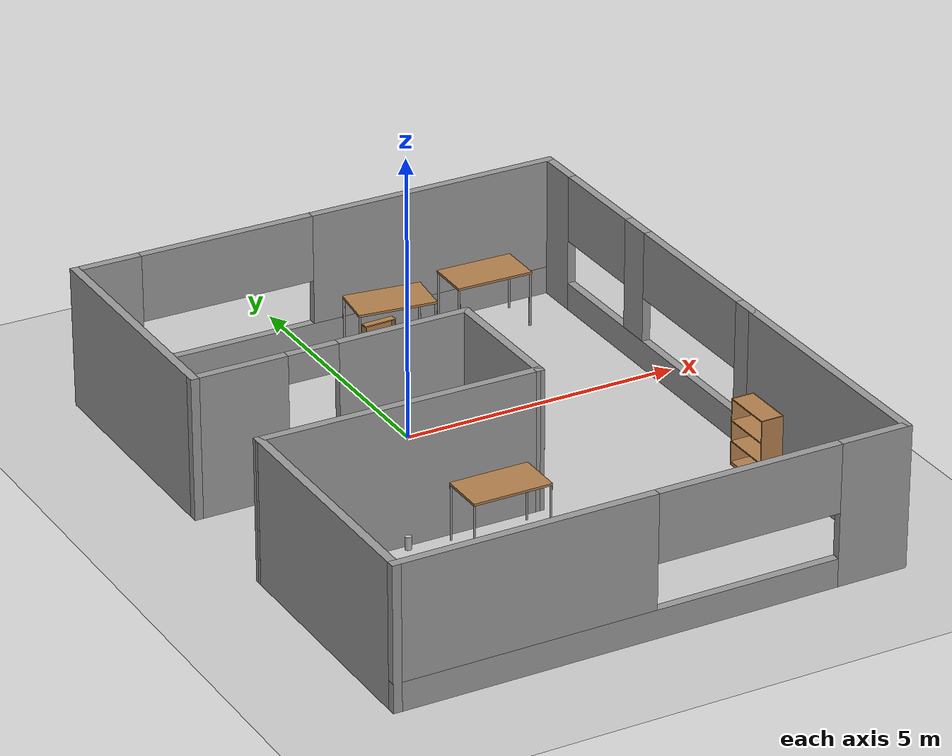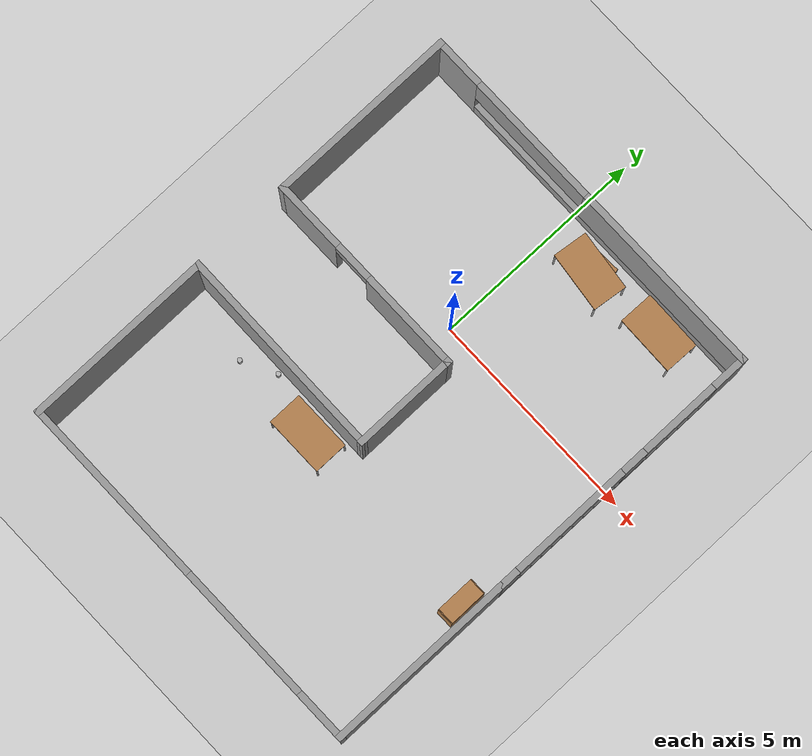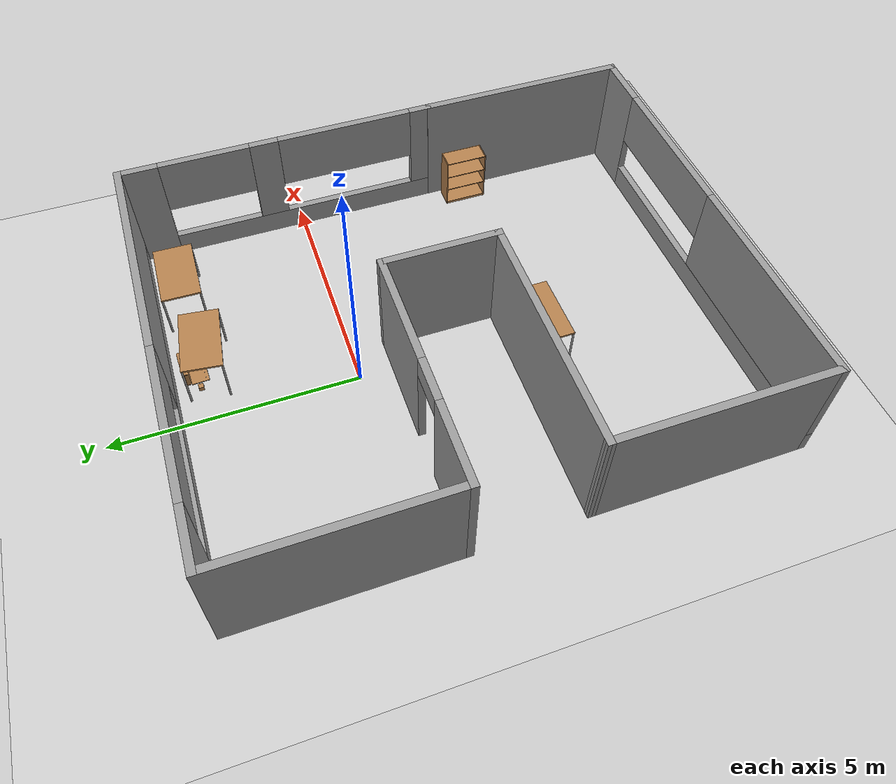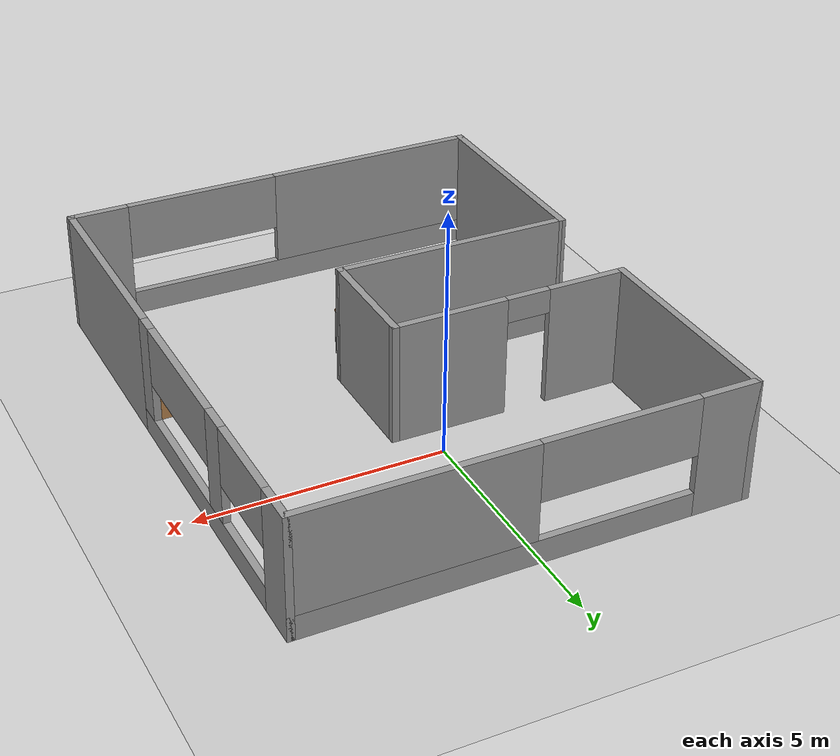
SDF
<sdf version="1.6">
 <world name="default">
  <model name="ground_plane">
   <static>1</static>
   <link name="link">
    <collision name="collision">
     <geometry><plane><normal>0 0 1</normal><size>100 100</size></plane></geometry>
     <surface><friction><ode><mu>100</mu><mu2>50</mu2></ode></friction></surface>
    </collision>
    <visual name="visual">
     <cast_shadows>0</cast_shadows>
     <geometry><plane><normal>0 0 1</normal><size>100 100</size></plane></geometry>
     <material>
      <script><uri>file://media/materials/scripts/gazebo.material</uri><name>Gazebo/Grey</name></script>
     </material>
    </visual>
   </link>
  </model>
  <model name="factory_room">
   <pose>0.23936 -1.91124 0 0 -0 0</pose>
   <link name="Wall_34">
    <collision name="Wall_34_Collision">
     <geometry><box><size>4.5 0.15 2.5</size></box></geometry>
     <pose>0 0 1.25 0 -0 0</pose>
    </collision>
    <visual name="Wall_34_Visual">
     <pose>0 0 1.25 0 -0 0</pose>
     <geometry><box><size>4.5 0.15 2.5</size></box></geometry>
     <material>
      <script><uri>file://media/materials/scripts/gazebo.material</uri><name>Gazebo/Grey</name></script>
      <ambient>1 1 1 1</ambient>
     </material>
    </visual>
    <pose>4.4246 -3.33419 0 0 0 -1.5708</pose>
   </link>
   <link name="Wall_35">
    <pose>-0.0004 -5.50919 0 0 -0 3.14159</pose>
    <visual name="Wall_35_Visual_0">
     <pose>-3.87038 0 1.25 0 -0 0</pose>
     <geometry><box><size>1.25925 0.15 2.5</size></box></geometry>
     <material>
      <script><uri>file://media/materials/scripts/gazebo.material</uri><name>Gazebo/Grey</name></script>
      <ambient>1 1 1 1</ambient>
     </material>
    </visual>
    <collision name="Wall_35_Collision_0">
     <geometry><box><size>1.25925 0.15 2.5</size></box></geometry>
     <pose>-3.87038 0 1.25 0 -0 0</pose>
    </collision>
    <visual name="Wall_35_Visual_1">
     <pose>0.629623 0 0.25 0 -0 0</pose>
     <geometry><box><size>7.74075 0.15 0.5</size></box></geometry>
     <material>
      <script><uri>file://media/materials/scripts/gazebo.material</uri><name>Gazebo/Grey</name></script>
      <ambient>1 1 1 1</ambient>
     </material>
    </visual>
    <collision name="Wall_35_Collision_1">
     <geometry><box><size>7.74075 0.15 0.5</size></box></geometry>
     <pose>0.629623 0 0.25 0 -0 0</pose>
    </collision>
    <visual name="Wall_35_Visual_2">
     <pose>2.24649 0 1.5 0 -0 0</pose>
     <geometry><box><size>4.50701 0.15 2</size></box></geometry>
     <material>
      <script><uri>file://media/materials/scripts/gazebo.material</uri><name>Gazebo/Grey</name></script>
      <ambient>1 1 1 1</ambient>
     </material>
    </visual>
    <collision name="Wall_35_Collision_2">
     <geometry><box><size>4.50701 0.15 2</size></box></geometry>
     <pose>2.24649 0 1.5 0 -0 0</pose>
    </collision>
    <visual name="Wall_35_Visual_3">
     <pose>-1.62388 0 1.9 0 -0 0</pose>
     <geometry><box><size>3.23374 0.15 1.2</size></box></geometry>
     <material>
      <script><uri>file://media/materials/scripts/gazebo.material</uri><name>Gazebo/Grey</name></script>
      <ambient>1 1 1 1</ambient>
     </material>
    </visual>
    <collision name="Wall_35_Collision_3">
     <geometry><box><size>3.23374 0.15 1.2</size></box></geometry>
     <pose>-1.62388 0 1.9 0 -0 0</pose>
    </collision>
   </link>
   <link name="Wall_36">
    <collision name="Wall_36_Collision">
     <geometry><box><size>4.5 0.15 2.5</size></box></geometry>
     <pose>0 0 1.25 0 -0 0</pose>
    </collision>
    <visual name="Wall_36_Visual">
     <pose>0 0 1.25 0 -0 0</pose>
     <geometry><box><size>4.5 0.15 2.5</size></box></geometry>
     <material>
      <script><uri>file://media/materials/scripts/gazebo.material</uri><name>Gazebo/Grey</name></script>
      <ambient>1 1 1 1</ambient>
     </material>
    </visual>
    <pose>-4.4254 -3.33419 0 0 -0 1.5708</pose>
   </link>
   <link name="Wall_38">
    <collision name="Wall_38_Collision">
     <geometry><box><size>2.5 0.15 2.5</size></box></geometry>
     <pose>0 0 1.25 0 -0 0</pose>
    </collision>
    <visual name="Wall_38_Visual">
     <pose>0 0 1.25 0 -0 0</pose>
     <geometry><box><size>2.5 0.15 2.5</size></box></geometry>
     <material>
      <script><uri>file://media/materials/scripts/gazebo.material</uri><name>Gazebo/Grey</name></script>
      <ambient>1 1 1 1</ambient>
     </material>
    </visual>
    <pose>0.425887 -0.015813 0 0 -0 1.5708</pose>
   </link>
   <link name="Wall_39">
    <pose>-1.99911 1.15919 0 0 -0 3.14159</pose>
    <visual name="Wall_39_Visual_0">
     <pose>-1.30008 0 1.25 0 -0 0</pose>
     <geometry><box><size>2.39984 0.15 2.5</size></box></geometry>
     <material>
      <script><uri>file://media/materials/scripts/gazebo.material</uri><name>Gazebo/Grey</name></script>
      <ambient>1 1 1 1</ambient>
     </material>
    </visual>
    <collision name="Wall_39_Collision_0">
     <geometry><box><size>2.39984 0.15 2.5</size></box></geometry>
     <pose>-1.30008 0 1.25 0 -0 0</pose>
    </collision>
    <visual name="Wall_39_Visual_1">
     <pose>1.64992 0 1.25 0 -0 0</pose>
     <geometry><box><size>1.70016 0.15 2.5</size></box></geometry>
     <material>
      <script><uri>file://media/materials/scripts/gazebo.material</uri><name>Gazebo/Grey</name></script>
      <ambient>1 1 1 1</ambient>
     </material>
    </visual>
    <collision name="Wall_39_Collision_1">
     <geometry><box><size>1.70016 0.15 2.5</size></box></geometry>
     <pose>1.64992 0 1.25 0 -0 0</pose>
    </collision>
    <visual name="Wall_39_Visual_2">
     <pose>0.349836 0 2.25 0 -0 0</pose>
     <geometry><box><size>0.9 0.15 0.5</size></box></geometry>
     <material>
      <script><uri>file://media/materials/scripts/gazebo.material</uri><name>Gazebo/Grey</name></script>
      <ambient>1 1 1 1</ambient>
     </material>
    </visual>
    <collision name="Wall_39_Collision_2">
     <geometry><box><size>0.9 0.15 0.5</size></box></geometry>
     <pose>0.349836 0 2.25 0 -0 0</pose>
    </collision>
   </link>
   <link name="Wall_40">
    <collision name="Wall_40_Collision">
     <geometry><box><size>4.5 0.15 2.5</size></box></geometry>
     <pose>0 0 1.25 0 -0 0</pose>
    </collision>
    <visual name="Wall_40_Visual">
     <pose>0 0 1.25 0 -0 0</pose>
     <geometry><box><size>4.5 0.15 2.5</size></box></geometry>
     <material>
      <script><uri>file://media/materials/scripts/gazebo.material</uri><name>Gazebo/Grey</name></script>
      <ambient>1 1 1 1</ambient>
     </material>
    </visual>
    <pose>-4.42411 3.33419 0 0 -0 1.5708</pose>
   </link>
   <link name="Wall_41">
    <pose>0.000887 5.50919 0 0 -0 0</pose>
    <visual name="Wall_41_Visual_0">
     <pose>-3.8901 0 1.25 0 -0 0</pose>
     <geometry><box><size>1.21979 0.15 2.5</size></box></geometry>
     <material>
      <script><uri>file://media/materials/scripts/gazebo.material</uri><name>Gazebo/Grey</name></script>
      <ambient>1 1 1 1</ambient>
     </material>
    </visual>
    <collision name="Wall_41_Collision_0">
     <geometry><box><size>1.21979 0.15 2.5</size></box></geometry>
     <pose>-3.8901 0 1.25 0 -0 0</pose>
    </collision>
    <visual name="Wall_41_Visual_1">
     <pose>0.609898 0 0.25 0 -0 0</pose>
     <geometry><box><size>7.7802 0.15 0.5</size></box></geometry>
     <material>
      <script><uri>file://media/materials/scripts/gazebo.material</uri><name>Gazebo/Grey</name></script>
      <ambient>1 1 1 1</ambient>
     </material>
    </visual>
    <collision name="Wall_41_Collision_1">
     <geometry><box><size>7.7802 0.15 0.5</size></box></geometry>
     <pose>0.609898 0 0.25 0 -0 0</pose>
    </collision>
    <visual name="Wall_41_Visual_2">
     <pose>2.18031 0 1.5 0 -0 0</pose>
     <geometry><box><size>4.63939 0.15 2</size></box></geometry>
     <material>
      <script><uri>file://media/materials/scripts/gazebo.material</uri><name>Gazebo/Grey</name></script>
      <ambient>1 1 1 1</ambient>
     </material>
    </visual>
    <collision name="Wall_41_Collision_2">
     <geometry><box><size>4.63939 0.15 2</size></box></geometry>
     <pose>2.18031 0 1.5 0 -0 0</pose>
    </collision>
    <visual name="Wall_41_Visual_3">
     <pose>-1.7098 0 1.9 0 -0 0</pose>
     <geometry><box><size>3.14082 0.15 1.2</size></box></geometry>
     <material>
      <script><uri>file://media/materials/scripts/gazebo.material</uri><name>Gazebo/Grey</name></script>
      <ambient>1 1 1 1</ambient>
     </material>
    </visual>
    <collision name="Wall_41_Collision_3">
     <geometry><box><size>3.14082 0.15 1.2</size></box></geometry>
     <pose>-1.7098 0 1.9 0 -0 0</pose>
    </collision>
   </link>
   <link name="Wall_42">
    <pose>4.42589 2.20919 0 0 0 -1.5708</pose>
    <visual name="Wall_42_Visual_0">
     <pose>-2.93644 0 1.25 0 -0 0</pose>
     <geometry><box><size>0.87712 0.15 2.5</size></box></geometry>
     <material>
      <script><uri>file://media/materials/scripts/gazebo.material</uri><name>Gazebo/Grey</name></script>
      <ambient>1 1 1 1</ambient>
     </material>
    </visual>
    <collision name="Wall_42_Collision_0">
     <geometry><box><size>0.87712 0.15 2.5</size></box></geometry>
     <pose>-2.93644 0 1.25 0 -0 0</pose>
    </collision>
    <visual name="Wall_42_Visual_1">
     <pose>0.43856 0 0.25 0 -0 0</pose>
     <geometry><box><size>5.87288 0.15 0.5</size></box></geometry>
     <material>
      <script><uri>file://media/materials/scripts/gazebo.material</uri><name>Gazebo/Grey</name></script>
      <ambient>1 1 1 1</ambient>
     </material>
    </visual>
    <collision name="Wall_42_Collision_1">
     <geometry><box><size>5.87288 0.15 0.5</size></box></geometry>
     <pose>0.43856 0 0.25 0 -0 0</pose>
    </collision>
    <visual name="Wall_42_Visual_2">
     <pose>-0.302367 0 1.5 0 -0 0</pose>
     <geometry><box><size>0.609811 0.15 2</size></box></geometry>
     <material>
      <script><uri>file://media/materials/scripts/gazebo.material</uri><name>Gazebo/Grey</name></script>
      <ambient>1 1 1 1</ambient>
     </material>
    </visual>
    <collision name="Wall_42_Collision_2">
     <geometry><box><size>0.609811 0.15 2</size></box></geometry>
     <pose>-0.302367 0 1.5 0 -0 0</pose>
    </collision>
    <visual name="Wall_42_Visual_3">
     <pose>3.13334 0 1.5 0 -0 0</pose>
     <geometry><box><size>0.483315 0.15 2</size></box></geometry>
     <material>
      <script><uri>file://media/materials/scripts/gazebo.material</uri><name>Gazebo/Grey</name></script>
      <ambient>1 1 1 1</ambient>
     </material>
    </visual>
    <collision name="Wall_42_Collision_3">
     <geometry><box><size>0.483315 0.15 2</size></box></geometry>
     <pose>3.13334 0 1.5 0 -0 0</pose>
    </collision>
    <visual name="Wall_42_Visual_4">
     <pose>-1.55258 0 1.9 0 -0 0</pose>
     <geometry><box><size>1.89061 0.15 1.2</size></box></geometry>
     <material>
      <script><uri>file://media/materials/scripts/gazebo.material</uri><name>Gazebo/Grey</name></script>
      <ambient>1 1 1 1</ambient>
     </material>
    </visual>
    <collision name="Wall_42_Collision_4">
     <geometry><box><size>1.89061 0.15 1.2</size></box></geometry>
     <pose>-1.55258 0 1.9 0 -0 0</pose>
    </collision>
    <visual name="Wall_42_Visual_5">
     <pose>1.44711 0 1.9 0 -0 0</pose>
     <geometry><box><size>2.88915 0.15 1.2</size></box></geometry>
     <material>
      <script><uri>file://media/materials/scripts/gazebo.material</uri><name>Gazebo/Grey</name></script>
      <ambient>1 1 1 1</ambient>
     </material>
    </visual>
    <collision name="Wall_42_Collision_5">
     <geometry><box><size>2.88915 0.15 1.2</size></box></geometry>
     <pose>1.44711 0 1.9 0 -0 0</pose>
    </collision>
   </link>
   <link name="Wall_44">
    <collision name="Wall_44_Collision">
     <geometry><box><size>5.00139 0.15 2.5</size></box></geometry>
     <pose>0 0 1.25 0 -0 0</pose>
    </collision>
    <visual name="Wall_44_Visual">
     <pose>0 0 1.25 0 -0 0</pose>
     <geometry><box><size>5.00139 0.15 2.5</size></box></geometry>
     <material>
      <script><uri>file://media/materials/scripts/gazebo.material</uri><name>Gazebo/Grey</name></script>
      <ambient>1 1 1 1</ambient>
     </material>
    </visual>
    <pose>-1.99976 -1.175 0 0 0 -0.006519</pose>
   </link>
   <static>1</static>
  </model>
  <model name="table">
   <static>0</static>
   <link name="link">
    <collision name="surface">
     <pose>0 0 1 0 -0 0</pose>
     <geometry><box><size>1.5 0.8 0.03</size></box></geometry>
     <surface><friction><ode><mu>0.6</mu><mu2>0.6</mu2></ode></friction></surface>
    </collision>
    <visual name="visual1">
     <pose>0 0 1 0 -0 0</pose>
     <geometry><box><size>1.4 0.8 0.04</size></box></geometry>
     <material>
      <script><uri>file://media/materials/scripts/gazebo.material</uri><name>Gazebo/Wood</name></script>
     </material>
    </visual>
    <collision name="front_left_leg">
     <pose>0.68 0.38 0.5 0 -0 0</pose>
     <geometry><cylinder><radius>0.02</radius><length>1</length></cylinder></geometry>
    </collision>
    <visual name="front_left_leg">
     <pose>0.68 0.38 0.5 0 -0 0</pose>
     <geometry><cylinder><radius>0.02</radius><length>1</length></cylinder></geometry>
     <material>
      <script><uri>file://media/materials/scripts/gazebo.material</uri><name>Gazebo/Grey</name></script>
     </material>
    </visual>
    <collision name="front_right_leg">
     <pose>0.68 -0.38 0.5 0 -0 0</pose>
     <geometry><cylinder><radius>0.02</radius><length>1</length></cylinder></geometry>
    </collision>
    <visual name="front_right_leg">
     <pose>0.68 -0.38 0.5 0 -0 0</pose>
     <geometry><cylinder><radius>0.02</radius><length>1</length></cylinder></geometry>
     <material>
      <script><uri>file://media/materials/scripts/gazebo.material</uri><name>Gazebo/Grey</name></script>
     </material>
    </visual>
    <collision name="back_right_leg">
     <pose>-0.68 -0.38 0.5 0 -0 0</pose>
     <geometry><cylinder><radius>0.02</radius><length>1</length></cylinder></geometry>
    </collision>
    <visual name="back_right_leg">
     <pose>-0.68 -0.38 0.5 0 -0 0</pose>
     <geometry><cylinder><radius>0.02</radius><length>1</length></cylinder></geometry>
     <material>
      <script><uri>file://media/materials/scripts/gazebo.material</uri><name>Gazebo/Grey</name></script>
     </material>
    </visual>
    <collision name="back_left_leg">
     <pose>-0.68 0.38 0.5 0 -0 0</pose>
     <geometry><cylinder><radius>0.02</radius><length>1</length></cylinder></geometry>
    </collision>
    <visual name="back_left_leg">
     <pose>-0.68 0.38 0.5 0 -0 0</pose>
     <geometry><cylinder><radius>0.02</radius><length>1</length></cylinder></geometry>
     <material>
      <script><uri>file://media/materials/scripts/gazebo.material</uri><name>Gazebo/Grey</name></script>
     </material>
    </visual>
    <inertial>
     <inertia><ixx>1</ixx><ixy>0</ixy><ixz>0</ixz><iyy>1</iyy><iyz>0</iyz><izz>1</izz></inertia>
     <mass>1</mass>
    </inertial>
   </link>
   <pose>1.1663 2.81965 0 0 0 -0.122893</pose>
  </model>
  <model name="table_0">
   <static>0</static>
   <link name="link">
    <collision name="surface">
     <pose>0 0 1 0 -0 0</pose>
     <geometry><box><size>1.5 0.8 0.03</size></box></geometry>
     <surface><friction><ode><mu>0.6</mu><mu2>0.6</mu2></ode></friction></surface>
    </collision>
    <visual name="visual1">
     <pose>0 0 1 0 -0 0</pose>
     <geometry><box><size>1.4 0.8 0.04</size></box></geometry>
     <material>
      <script><uri>file://media/materials/scripts/gazebo.material</uri><name>Gazebo/Wood</name></script>
     </material>
    </visual>
    <collision name="front_left_leg">
     <pose>0.68 0.38 0.5 0 -0 0</pose>
     <geometry><cylinder><radius>0.02</radius><length>1</length></cylinder></geometry>
    </collision>
    <visual name="front_left_leg">
     <pose>0.68 0.38 0.5 0 -0 0</pose>
     <geometry><cylinder><radius>0.02</radius><length>1</length></cylinder></geometry>
     <material>
      <script><uri>file://media/materials/scripts/gazebo.material</uri><name>Gazebo/Grey</name></script>
     </material>
    </visual>
    <collision name="front_right_leg">
     <pose>0.68 -0.38 0.5 0 -0 0</pose>
     <geometry><cylinder><radius>0.02</radius><length>1</length></cylinder></geometry>
    </collision>
    <visual name="front_right_leg">
     <pose>0.68 -0.38 0.5 0 -0 0</pose>
     <geometry><cylinder><radius>0.02</radius><length>1</length></cylinder></geometry>
     <material>
      <script><uri>file://media/materials/scripts/gazebo.material</uri><name>Gazebo/Grey</name></script>
     </material>
    </visual>
    <collision name="back_right_leg">
     <pose>-0.68 -0.38 0.5 0 -0 0</pose>
     <geometry><cylinder><radius>0.02</radius><length>1</length></cylinder></geometry>
    </collision>
    <visual name="back_right_leg">
     <pose>-0.68 -0.38 0.5 0 -0 0</pose>
     <geometry><cylinder><radius>0.02</radius><length>1</length></cylinder></geometry>
     <material>
      <script><uri>file://media/materials/scripts/gazebo.material</uri><name>Gazebo/Grey</name></script>
     </material>
    </visual>
    <collision name="back_left_leg">
     <pose>-0.68 0.38 0.5 0 -0 0</pose>
     <geometry><cylinder><radius>0.02</radius><length>1</length></cylinder></geometry>
    </collision>
    <visual name="back_left_leg">
     <pose>-0.68 0.38 0.5 0 -0 0</pose>
     <geometry><cylinder><radius>0.02</radius><length>1</length></cylinder></geometry>
     <material>
      <script><uri>file://media/materials/scripts/gazebo.material</uri><name>Gazebo/Grey</name></script>
     </material>
    </visual>
    <inertial>
     <inertia><ixx>1</ixx><ixy>0</ixy><ixz>0</ixz><iyy>1</iyy><iyz>0</iyz><izz>1</izz></inertia>
     <mass>1</mass>
    </inertial>
   </link>
   <pose>3.06043 2.96984 -2e-06 -0 3e-06 -0.019784</pose>
  </model>
  <model name="wooden_case_metal_peg">
   <link name="wooden_case::base">
    <pose>0 0 0.024 0 -0 0</pose>
    <inertial>
     <pose>-0.022184 0 0.171592 0 -0 0</pose>
     <mass>3.96264</mass>
     <inertia>
      <ixx>0.213536</ixx>
      <ixy>0</ixy>
      <ixz>0.000779377</ixz>
      <iyy>0.0708943</iyy>
      <iyz>0</iyz>
      <izz>0.154604</izz>
     </inertia>
    </inertial>
    <collision name="collision_back">
     <pose>-0.053975 0 0.1778 0 -0 0</pose>
     <geometry><box><size>0.01905 0.5461 0.3175</size></box></geometry>
     <surface>
      <contact>
       <poissons_ratio>0.347</poissons_ratio>
       <elastic_modulus>8.8e+09</elastic_modulus>
       <ode><kp>100000</kp><kd>100</kd><max_vel>100</max_vel><min_depth>0.001</min_depth></ode>
      </contact>
      <friction>
       <torsional>
        <coefficient>1</coefficient>
        <use_patch_radius>0</use_patch_radius>
        <surface_radius>0.01</surface_radius>
       </torsional>
      </friction>
     </surface>
    </collision>
    <visual name="visual_back">
     <pose>-0.053975 0 0.1778 0 -0 0</pose>
     <geometry><box><size>0.01905 0.5461 0.3175</size></box></geometry>
     <material>
      <script><uri>file://media/materials/scripts/gazebo.material</uri><name>Gazebo/Wood</name></script>
     </material>
    </visual>
    <collision name="collision_bottom">
     <pose>0 0 0.009525 0 -0 0</pose>
     <geometry><box><size>0.127 0.5842 0.01905</size></box></geometry>
     <surface>
      <contact>
       <poissons_ratio>0.347</poissons_ratio>
       <elastic_modulus>8.8e+09</elastic_modulus>
       <ode><kp>100000</kp><kd>100</kd><max_vel>100</max_vel><min_depth>0.001</min_depth></ode>
      </contact>
      <friction>
       <torsional>
        <coefficient>1</coefficient>
        <use_patch_radius>0</use_patch_radius>
        <surface_radius>0.01</surface_radius>
       </torsional>
      </friction>
     </surface>
    </collision>
    <visual name="visual_bottom">
     <pose>0 0 0.009525 0 -0 0</pose>
     <geometry><box><size>0.127 0.5842 0.01905</size></box></geometry>
     <material>
      <script><uri>file://media/materials/scripts/gazebo.material</uri><name>Gazebo/Wood</name></script>
     </material>
    </visual>
    <collision name="collision_top">
     <pose>0 0 0.346075 0 -0 0</pose>
     <geometry><box><size>0.127 0.5842 0.01905</size></box></geometry>
     <surface>
      <contact>
       <poissons_ratio>0.347</poissons_ratio>
       <elastic_modulus>8.8e+09</elastic_modulus>
       <ode><kp>100000</kp><kd>100</kd><max_vel>100</max_vel><min_depth>0.001</min_depth></ode>
      </contact>
      <friction>
       <torsional>
        <coefficient>1</coefficient>
        <use_patch_radius>0</use_patch_radius>
        <surface_radius>0.01</surface_radius>
       </torsional>
      </friction>
     </surface>
    </collision>
    <visual name="visual_top">
     <pose>0 0 0.346075 0 -0 0</pose>
     <geometry><box><size>0.127 0.5842 0.01905</size></box></geometry>
     <material>
      <script><uri>file://media/materials/scripts/gazebo.material</uri><name>Gazebo/Wood</name></script>
     </material>
    </visual>
    <collision name="collision_left">
     <pose>0 -0.282575 0.1778 0 -0 0</pose>
     <geometry><box><size>0.127 0.01905 0.3175</size></box></geometry>
     <surface>
      <contact>
       <poissons_ratio>0.347</poissons_ratio>
       <elastic_modulus>8.8e+09</elastic_modulus>
       <ode><kp>100000</kp><kd>100</kd><max_vel>100</max_vel><min_depth>0.001</min_depth></ode>
      </contact>
      <friction>
       <torsional>
        <coefficient>1</coefficient>
        <use_patch_radius>0</use_patch_radius>
        <surface_radius>0.01</surface_radius>
       </torsional>
      </friction>
     </surface>
    </collision>
    <visual name="visual_left">
     <pose>0 -0.282575 0.1778 0 -0 0</pose>
     <geometry><box><size>0.127 0.01905 0.3175</size></box></geometry>
     <material>
      <script><uri>file://media/materials/scripts/gazebo.material</uri><name>Gazebo/Wood</name></script>
     </material>
    </visual>
    <collision name="collision_right">
     <pose>0 0.282575 0.1778 0 -0 0</pose>
     <geometry><box><size>0.127 0.01905 0.3175</size></box></geometry>
     <surface>
      <contact>
       <poissons_ratio>0.347</poissons_ratio>
       <elastic_modulus>8.8e+09</elastic_modulus>
       <ode><kp>100000</kp><kd>100</kd><max_vel>100</max_vel><min_depth>0.001</min_depth></ode>
      </contact>
      <friction>
       <torsional>
        <coefficient>1</coefficient>
        <use_patch_radius>0</use_patch_radius>
        <surface_radius>0.01</surface_radius>
       </torsional>
      </friction>
     </surface>
    </collision>
    <visual name="visual_right">
     <pose>0 0.282575 0.1778 0 -0 0</pose>
     <geometry><box><size>0.127 0.01905 0.3175</size></box></geometry>
     <material>
      <script><uri>file://media/materials/scripts/gazebo.material</uri><name>Gazebo/Wood</name></script>
     </material>
    </visual>
    <collision name="collision_block_left">
     <pose>0.0095 -0.2151 -0.012 0 -0 0</pose>
     <geometry><box><size>0.108 0.05 0.024</size></box></geometry>
     <surface>
      <contact>
       <poissons_ratio>0.347</poissons_ratio>
       <elastic_modulus>8.8e+09</elastic_modulus>
       <ode><kp>100000</kp><kd>100</kd><max_vel>100</max_vel><min_depth>0.001</min_depth></ode>
      </contact>
      <friction>
       <torsional>
        <coefficient>1</coefficient>
        <use_patch_radius>0</use_patch_radius>
        <surface_radius>0.01</surface_radius>
       </torsional>
      </friction>
     </surface>
    </collision>
    <visual name="visual_block_left">
     <pose>0.0095 -0.2151 -0.012 0 -0 0</pose>
     <geometry><box><size>0.108 0.05 0.024</size></box></geometry>
     <material>
      <script><uri>file://media/materials/scripts/gazebo.material</uri><name>Gazebo/Wood</name></script>
     </material>
    </visual>
    <collision name="collision_block_right">
     <pose>0.0095 0.2151 -0.012 0 -0 0</pose>
     <geometry><box><size>0.108 0.05 0.024</size></box></geometry>
     <surface>
      <contact>
       <poissons_ratio>0.347</poissons_ratio>
       <elastic_modulus>8.8e+09</elastic_modulus>
       <ode><kp>100000</kp><kd>100</kd><max_vel>100</max_vel><min_depth>0.001</min_depth></ode>
      </contact>
      <friction>
       <torsional>
        <coefficient>1</coefficient>
        <use_patch_radius>0</use_patch_radius>
        <surface_radius>0.01</surface_radius>
       </torsional>
      </friction>
     </surface>
    </collision>
    <visual name="visual_block_right">
     <pose>0.0095 0.2151 -0.012 0 -0 0</pose>
     <geometry><box><size>0.108 0.05 0.024</size></box></geometry>
     <material>
      <script><uri>file://media/materials/scripts/gazebo.material</uri><name>Gazebo/Wood</name></script>
     </material>
    </visual>
   </link>
   <link name="wooden_case::lid">
    <pose>0.243775 0 0.009525 0 -0 0</pose>
    <inertial>
     <mass>1.97874</mass>
     <inertia>
      <ixx>0.0563367</ixx>
      <ixy>0</ixy>
      <ixz>0</ixz>
      <iyy>0.020911</iyy>
      <iyz>0</iyz>
      <izz>0.0771281</izz>
     </inertia>
    </inertial>
    <collision name="collision">
     <geometry><box><size>0.3556 0.5842 0.01905</size></box></geometry>
     <surface>
      <contact>
       <poissons_ratio>0.347</poissons_ratio>
       <elastic_modulus>8.8e+09</elastic_modulus>
       <ode><kp>100000</kp><kd>100</kd><max_vel>100</max_vel><min_depth>0.001</min_depth></ode>
      </contact>
      <friction>
       <torsional>
        <coefficient>1</coefficient>
        <use_patch_radius>0</use_patch_radius>
        <surface_radius>0.01</surface_radius>
       </torsional>
      </friction>
     </surface>
    </collision>
    <visual name="visual">
     <geometry><box><size>0.3556 0.5842 0.01905</size></box></geometry>
     <material>
      <script><uri>file://media/materials/scripts/gazebo.material</uri><name>Gazebo/Wood</name></script>
     </material>
    </visual>
    <visual name="tee_nut_1">
     <pose>0.122 -0.216 0 0 -0 0</pose>
     <geometry><cylinder><radius>0.00635</radius><length>0.0192405</length></cylinder></geometry>
     <material>
      <script><uri>file://media/materials/scripts/gazebo.material</uri><name>Gazebo/Grey</name></script>
     </material>
    </visual>
    <visual name="tee_nut_2">
     <pose>0.122 -0.088 0 0 -0 0</pose>
     <geometry><cylinder><radius>0.00635</radius><length>0.0192405</length></cylinder></geometry>
     <material>
      <script><uri>file://media/materials/scripts/gazebo.material</uri><name>Gazebo/Grey</name></script>
     </material>
    </visual>
    <visual name="tee_nut_3">
     <pose>0.122 0.088 0 0 -0 0</pose>
     <geometry><cylinder><radius>0.00635</radius><length>0.0192405</length></cylinder></geometry>
     <material>
      <script><uri>file://media/materials/scripts/gazebo.material</uri><name>Gazebo/Grey</name></script>
     </material>
    </visual>
    <visual name="tee_nut_4">
     <pose>0.122 0.216 0 0 -0 0</pose>
     <geometry><cylinder><radius>0.00635</radius><length>0.0192405</length></cylinder></geometry>
     <material>
      <script><uri>file://media/materials/scripts/gazebo.material</uri><name>Gazebo/Grey</name></script>
     </material>
    </visual>
   </link>
   <joint name="wooden_case::lid_hinge" type="revolute">
    <pose>-0.1778 0 0.01905 0 -0 0</pose>
    <parent>wooden_case::base</parent>
    <child>wooden_case::lid</child>
    <axis>
     <xyz>0 1 0</xyz>
     <limit><upper>0.523599</upper><lower>-1.5708</lower></limit>
     <use_parent_model_frame>0</use_parent_model_frame>
     <dynamics><spring_reference>0</spring_reference><spring_stiffness>0</spring_stiffness></dynamics>
    </axis>
   </joint>
   <link name="peg::link">
    <pose>0.365774 0.216 0.05005 0 -0 0</pose>
    <inertial>
     <mass>0.0121</mass>
     <inertia>
      <ixx>3.90898e-06</ixx>
      <ixy>0</ixy>
      <ixz>0</ixz>
      <iyy>3.90898e-06</iyy>
      <iyz>0</iyz>
      <izz>6.58845e-08</izz>
     </inertia>
    </inertial>
    <collision name="collision">
     <geometry><cylinder><radius>0.0033</radius><length>0.062</length></cylinder></geometry>
     <surface>
      <contact>
       <poissons_ratio>0.305</poissons_ratio>
       <elastic_modulus>2e+11</elastic_modulus>
       <ode><kp>100000</kp><kd>100</kd><max_vel>100</max_vel><min_depth>0.001</min_depth></ode>
      </contact>
      <friction>
       <torsional>
        <coefficient>1</coefficient>
        <use_patch_radius>0</use_patch_radius>
        <surface_radius>0.01</surface_radius>
       </torsional>
      </friction>
     </surface>
    </collision>
    <visual name="visual">
     <geometry><cylinder><radius>0.0033</radius><length>0.062</length></cylinder></geometry>
     <material>
      <script><uri>file://media/materials/scripts/gazebo.material</uri><name>Gazebo/Grey</name></script>
     </material>
    </visual>
   </link>
   <joint name="case_peg" type="revolute">
    <child>peg::link</child>
    <parent>wooden_case::lid</parent>
    <axis>
     <xyz>0 0 1</xyz>
     <limit><upper>0</upper><lower>0</lower></limit>
     <use_parent_model_frame>0</use_parent_model_frame>
     <dynamics><spring_reference>0</spring_reference><spring_stiffness>0</spring_stiffness></dynamics>
    </axis>
   </joint>
   <pose>1.19915 3.2886 -0.001057 0 -0.000438 -1.52739</pose>
  </model>
  <model name="wood_cube_10cm">
   <link name="link">
    <pose>0 0 0.05 0 -0 0</pose>
    <inertial>
     <mass>0.5167</mass>
     <inertia>
      <ixx>0.000861167</ixx>
      <ixy>0</ixy>
      <ixz>0</ixz>
      <iyy>0.000861167</iyy>
      <iyz>0</iyz>
      <izz>0.000861167</izz>
     </inertia>
    </inertial>
    <collision name="collision">
     <geometry><box><size>0.1 0.1 0.1</size></box></geometry>
     <surface>
      <contact>
       <poissons_ratio>0.347</poissons_ratio>
       <elastic_modulus>8.8e+09</elastic_modulus>
       <ode><kp>100000</kp><kd>100</kd><max_vel>100</max_vel><min_depth>0.001</min_depth></ode>
      </contact>
      <friction>
       <torsional>
        <coefficient>1</coefficient>
        <use_patch_radius>0</use_patch_radius>
        <surface_radius>0.01</surface_radius>
       </torsional>
      </friction>
     </surface>
    </collision>
    <visual name="visual">
     <geometry><box><size>0.1 0.1 0.1</size></box></geometry>
     <material>
      <script><uri>file://media/materials/scripts/gazebo.material</uri><name>Gazebo/Wood</name></script>
     </material>
    </visual>
   </link>
   <pose>1.67422 3.21228 -0.001013 0 -0 0</pose>
  </model>
  <model name="bookshelf">
   <static>1</static>
   <link name="link">
    <inertial><mass>1</mass></inertial>
    <collision name="back">
     <pose>0 0.005 0.6 0 -0 0</pose>
     <geometry><box><size>0.9 0.01 1.2</size></box></geometry>
    </collision>
    <visual name="visual1">
     <pose>0 0.005 0.6 0 -0 0</pose>
     <geometry><box><size>0.9 0.01 1.2</size></box></geometry>
     <material>
      <script><uri>file://media/materials/scripts/gazebo.material</uri><name>Gazebo/Wood</name></script>
     </material>
    </visual>
    <collision name="left_side">
     <pose>0.45 -0.195 0.6 0 -0 0</pose>
     <geometry><box><size>0.02 0.4 1.2</size></box></geometry>
    </collision>
    <visual name="visual2">
     <pose>0.45 -0.195 0.6 0 -0 0</pose>
     <geometry><box><size>0.02 0.4 1.2</size></box></geometry>
     <material>
      <script><uri>file://media/materials/scripts/gazebo.material</uri><name>Gazebo/Wood</name></script>
     </material>
    </visual>
    <collision name="right_side">
     <pose>-0.45 -0.195 0.6 0 -0 0</pose>
     <geometry><box><size>0.02 0.4 1.2</size></box></geometry>
    </collision>
    <visual name="visual3">
     <pose>-0.45 -0.195 0.6 0 -0 0</pose>
     <geometry><box><size>0.02 0.4 1.2</size></box></geometry>
     <material>
      <script><uri>file://media/materials/scripts/gazebo.material</uri><name>Gazebo/Wood</name></script>
     </material>
    </visual>
    <collision name="bottom">
     <pose>0 -0.195 0.03 0 -0 0</pose>
     <geometry><box><size>0.88 0.4 0.06</size></box></geometry>
    </collision>
    <visual name="visual4">
     <pose>0 -0.195 0.03 0 -0 0</pose>
     <geometry><box><size>0.88 0.4 0.06</size></box></geometry>
     <material>
      <script><uri>file://media/materials/scripts/gazebo.material</uri><name>Gazebo/Wood</name></script>
     </material>
    </visual>
    <collision name="top">
     <pose>0 -0.195 1.19 0 -0 0</pose>
     <geometry><box><size>0.88 0.4 0.02</size></box></geometry>
    </collision>
    <visual name="visual5">
     <pose>0 -0.195 1.19 0 -0 0</pose>
     <geometry><box><size>0.88 0.4 0.02</size></box></geometry>
     <material>
      <script><uri>file://media/materials/scripts/gazebo.material</uri><name>Gazebo/Wood</name></script>
     </material>
    </visual>
    <collision name="low_shelf">
     <pose>0 -0.195 0.43 0 -0 0</pose>
     <geometry><box><size>0.88 0.4 0.02</size></box></geometry>
    </collision>
    <visual name="visual6">
     <pose>0 -0.195 0.43 0 -0 0</pose>
     <geometry><box><size>0.88 0.4 0.02</size></box></geometry>
     <material>
      <script><uri>file://media/materials/scripts/gazebo.material</uri><name>Gazebo/Wood</name></script>
     </material>
    </visual>
    <collision name="high_shelf">
     <pose>0 -0.195 0.8 0 -0 0</pose>
     <geometry><box><size>0.88 0.4 0.02</size></box></geometry>
    </collision>
    <visual name="visual7">
     <pose>0 -0.195 0.8 0 -0 0</pose>
     <geometry><box><size>0.88 0.4 0.02</size></box></geometry>
     <material>
      <script><uri>file://media/materials/scripts/gazebo.material</uri><name>Gazebo/Wood</name></script>
     </material>
    </visual>
   </link>
   <pose>4.50878 -3.76621 0 0 0 -1.5708</pose>
  </model>
  <model name="beer">
   <link name="link">
    <pose>0 0 0.115 0 -0 0</pose>
    <inertial>
     <mass>0.39</mass>
     <inertia><ixx>0.00058</ixx><ixy>0</ixy><ixz>0</ixz><iyy>0.00058</iyy><iyz>0</iyz><izz>0.00019</izz></inertia>
    </inertial>
    <collision name="collision">
     <geometry><cylinder><radius>0.055</radius><length>0.23</length></cylinder></geometry>
    </collision>
    <visual name="visual">
     <geometry><cylinder><radius>0.055</radius><length>0.23</length></cylinder></geometry>
     <material>
      <script>
       <uri>model://beer/materials/scripts</uri>
       <uri>model://beer/materials/textures</uri>
       <name>Beer/Diffuse</name>
      </script>
     </material>
    </visual>
   </link>
   <pose>-2.49892 -3.64526 -2e-06 1e-06 -0 -1.3e-05</pose>
  </model>
  <model name="beer_0">
   <link name="link">
    <pose>0 0 0.115 0 -0 0</pose>
    <inertial>
     <mass>0.39</mass>
     <inertia><ixx>0.00058</ixx><ixy>0</ixy><ixz>0</ixz><iyy>0.00058</iyy><iyz>0</iyz><izz>0.00019</izz></inertia>
    </inertial>
    <collision name="collision">
     <geometry><cylinder><radius>0.055</radius><length>0.23</length></cylinder></geometry>
    </collision>
    <visual name="visual">
     <geometry><cylinder><radius>0.055</radius><length>0.23</length></cylinder></geometry>
     <material>
      <script>
       <uri>model://beer/materials/scripts</uri>
       <uri>model://beer/materials/textures</uri>
       <name>Beer/Diffuse</name>
      </script>
     </material>
    </visual>
   </link>
   <pose>-1.74107 -3.25339 -7e-06 -1e-06 -0 -1.3e-05</pose>
  </model>
  <model name="table_1">
   <static>0</static>
   <link name="link">
    <collision name="surface">
     <pose>0 0 1 0 -0 0</pose>
     <geometry><box><size>1.5 0.8 0.03</size></box></geometry>
     <surface><friction><ode><mu>0.6</mu><mu2>0.6</mu2></ode></friction></surface>
    </collision>
    <visual name="visual1">
     <pose>0 0 1 0 -0 0</pose>
     <geometry><box><size>1.4 0.8 0.04</size></box></geometry>
     <material>
      <script><uri>file://media/materials/scripts/gazebo.material</uri><name>Gazebo/Wood</name></script>
     </material>
    </visual>
    <collision name="front_left_leg">
     <pose>0.68 0.38 0.5 0 -0 0</pose>
     <geometry><cylinder><radius>0.02</radius><length>1</length></cylinder></geometry>
    </collision>
    <visual name="front_left_leg">
     <pose>0.68 0.38 0.5 0 -0 0</pose>
     <geometry><cylinder><radius>0.02</radius><length>1</length></cylinder></geometry>
     <material>
      <script><uri>file://media/materials/scripts/gazebo.material</uri><name>Gazebo/Grey</name></script>
     </material>
    </visual>
    <collision name="front_right_leg">
     <pose>0.68 -0.38 0.5 0 -0 0</pose>
     <geometry><cylinder><radius>0.02</radius><length>1</length></cylinder></geometry>
    </collision>
    <visual name="front_right_leg">
     <pose>0.68 -0.38 0.5 0 -0 0</pose>
     <geometry><cylinder><radius>0.02</radius><length>1</length></cylinder></geometry>
     <material>
      <script><uri>file://media/materials/scripts/gazebo.material</uri><name>Gazebo/Grey</name></script>
     </material>
    </visual>
    <collision name="back_right_leg">
     <pose>-0.68 -0.38 0.5 0 -0 0</pose>
     <geometry><cylinder><radius>0.02</radius><length>1</length></cylinder></geometry>
    </collision>
    <visual name="back_right_leg">
     <pose>-0.68 -0.38 0.5 0 -0 0</pose>
     <geometry><cylinder><radius>0.02</radius><length>1</length></cylinder></geometry>
     <material>
      <script><uri>file://media/materials/scripts/gazebo.material</uri><name>Gazebo/Grey</name></script>
     </material>
    </visual>
    <collision name="back_left_leg">
     <pose>-0.68 0.38 0.5 0 -0 0</pose>
     <geometry><cylinder><radius>0.02</radius><length>1</length></cylinder></geometry>
    </collision>
    <visual name="back_left_leg">
     <pose>-0.68 0.38 0.5 0 -0 0</pose>
     <geometry><cylinder><radius>0.02</radius><length>1</length></cylinder></geometry>
     <material>
      <script><uri>file://media/materials/scripts/gazebo.material</uri><name>Gazebo/Grey</name></script>
     </material>
    </visual>
    <inertial>
     <inertia><ixx>1</ixx><ixy>0</ixy><ixz>0</ixz><iyy>1</iyy><iyz>0</iyz><izz>1</izz></inertia>
     <mass>1</mass>
    </inertial>
   </link>
   <pose>-0.335042 -3.69989 -9e-06 1e-06 -1e-06 0</pose>
  </model>
  <model name="wood_cube_10cm_0">
   <link name="link">
    <pose>0 0 0.05 0 -0 0</pose>
    <inertial>
     <mass>0.5167</mass>
     <inertia>
      <ixx>0.000861167</ixx>
      <ixy>0</ixy>
      <ixz>0</ixz>
      <iyy>0.000861167</iyy>
      <iyz>0</iyz>
      <izz>0.000861167</izz>
     </inertia>
    </inertial>
    <collision name="collision">
     <geometry><box><size>0.1 0.1 0.1</size></box></geometry>
     <surface>
      <contact>
       <poissons_ratio>0.347</poissons_ratio>
       <elastic_modulus>8.8e+09</elastic_modulus>
       <ode><kp>100000</kp><kd>100</kd><max_vel>100</max_vel><min_depth>0.001</min_depth></ode>
      </contact>
      <friction>
       <torsional>
        <coefficient>1</coefficient>
        <use_patch_radius>0</use_patch_radius>
        <surface_radius>0.01</surface_radius>
       </torsional>
      </friction>
     </surface>
    </collision>
    <visual name="visual">
     <geometry><box><size>0.1 0.1 0.1</size></box></geometry>
     <material>
      <script><uri>file://media/materials/scripts/gazebo.material</uri><name>Gazebo/Wood</name></script>
     </material>
    </visual>
   </link>
   <pose>0.769568 3.04391 -0.001013 0 -0 0</pose>
  </model>
 </world>
</sdf>
